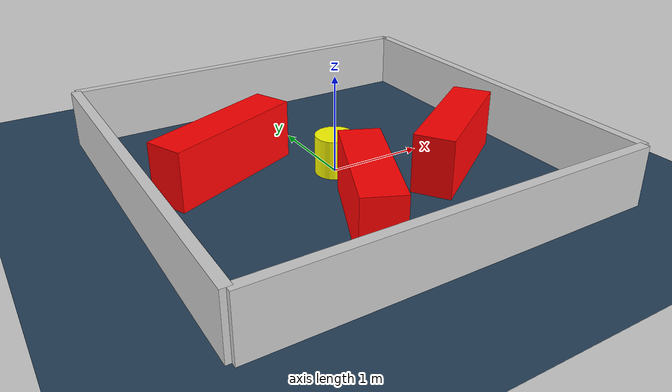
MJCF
<?xml version="1.0" ?>
<mujoco model="generated_environment">
  <option timestep="0.01" integrator="RK4" cone="elliptic"/>
  <default>
    <geom density="1"/>
  </default>
  <asset>
    <texture builtin="gradient" height="3072" rgb1="0.3 0.5 0.7" rgb2="0 0 0" type="skybox" width="512"/>
    <texture builtin="checker" height="300" mark="edge" markrgb="0.8 0.8 0.8" name="groundplane" rgb1="0.2 0.3 0.4" rgb2="0.1 0.2 0.3" type="2d" width="300"/>
    <material name="groundplane" reflectance="0.2" texrepeat="5 5" texture="groundplane" texuniform="true"/>
    <material name="robot" rgba="0.0 1.0 0.0 1"/>
  </asset>
  <worldbody>
    <light dir="0 0 -1" directional="true" pos="0 0 1.5"/>
    <geom condim="4" friction="1.0 0.005 0.001" material="groundplane" name="floor" size="0 0 0.05" type="plane"/>
    <body name="walls">
      <geom name="wall_1" condim="4" pos="-2.0 0.0 0.3" rgba="0.800000011920929 0.800000011920929 0.800000011920929 1.0" size="0.05 2.0 0.3" type="box"/>
      <geom name="wall_2" condim="4" pos="2.0 0.0 0.3" rgba="0.800000011920929 0.800000011920929 0.800000011920929 1.0" size="0.05 2.0 0.3" type="box"/>
      <geom name="wall_3" condim="4" pos="0.0 -2.0 0.3" rgba="0.800000011920929 0.800000011920929 0.800000011920929 1.0" size="2.0 0.05 0.3" type="box"/>
      <geom name="wall_4" condim="4" pos="0.0 2.0 0.3" rgba="0.800000011920929 0.800000011920929 0.800000011920929 1.0" size="2.0 0.05 0.3" type="box"/>
    </body>
    <body name="robot">
      <joint name="joint_x" type="slide" pos="0 0 0" axis="1 0 0"/>
      <joint name="joint_y" type="slide" pos="0 0 0" axis="0 1 0"/>
      <geom name="robot" type="sphere" pos="0.3 0.0 0.2" size="0.05" mass="5." friction="1.0 0.005 0.0001" condim="4" rgba="0.5 0.5 0.5 1.0"/>
      <site name="sensor_ball"/>
    </body>
    <body name="obstacle_movable_1">
      <geom name="obstacle_movable_1" condim="4" pos="0.0 0.0 0.2" euler="0 0 0.0" friction="1.0 0.005 0.001" rgba="1.0 1.0 0.0 1.0" size="0.2 0.2 0.0" type="cylinder" mass="0.1"/>
      <joint type="free"/>
    </body>
    <body name="obstacle_2_static">
      <geom name="obstacle_2_static" condim="4" pos="1.0694177798485627 -0.5223220313852803 0.3" euler="0 0 214.42117637629778" friction="1.0 0.005 0.001" rgba="1 0 0 1" size="0.6983356864173124 0.2 0.3" type="box"/>
    </body>
    <body name="obstacle_3_static">
      <geom name="obstacle_3_static" condim="4" pos="-0.9894863179687253 0.46068588192095805 0.3" euler="0 0 23.601016274665234" friction="1.0 0.005 0.001" rgba="1 0 0 1" size="0.7501800262911363 0.2 0.3" type="box"/>
    </body>
    <body name="obstacle_4_static">
      <geom name="obstacle_4_static" condim="4" pos="-0.24608229771665302 -0.9864557311906044 0.3" euler="0 0 245.69892745029492" friction="1.0 0.005 0.001" rgba="1 0 0 1" size="0.6471828482363993 0.2 0.3" type="box"/>
    </body>
  </worldbody>
  <actuator>
    <motor name="actuator_x" joint="joint_x" gear="1" ctrlrange="-1 1"/>
    <motor name="actuator_y" joint="joint_y" gear="1" ctrlrange="-1 1"/>
  </actuator>
</mujoco>
